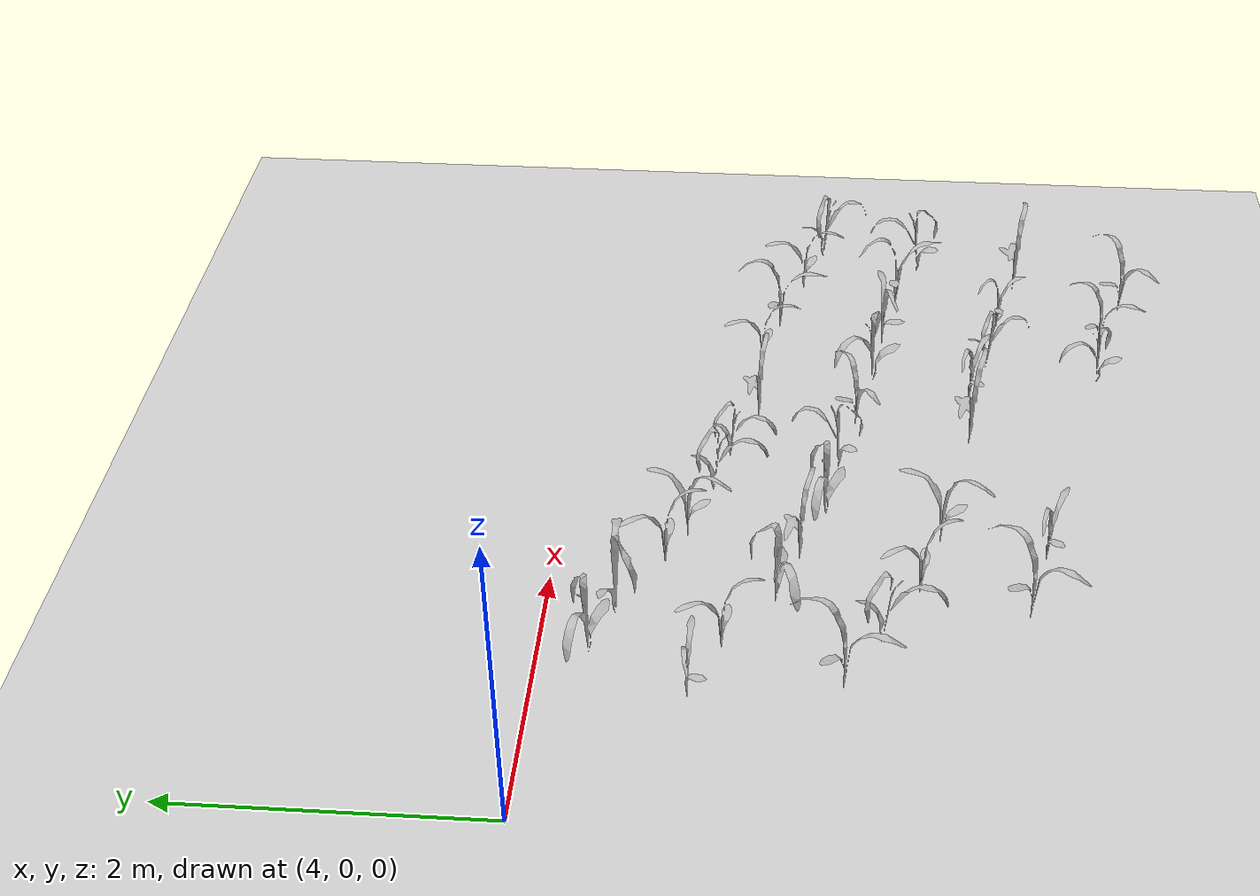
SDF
<sdf version="1.6">
 <world name="default">
  <model name="ground_plane">
   <static>1</static>
   <link name="link">
    <collision name="collision">
     <geometry><plane><normal>0 0 1</normal><size>100 100</size></plane></geometry>
     <surface>
      <contact><collide_bitmask>65535</collide_bitmask></contact>
      <friction><ode><mu>100</mu><mu2>50</mu2></ode></friction>
     </surface>
    </collision>
    <visual name="visual">
     <cast_shadows>0</cast_shadows>
     <geometry><plane><normal>0 0 1</normal><size>100 100</size></plane></geometry>
     <material>
      <script><uri>file://media/materials/scripts/gazebo.material</uri><name>Gazebo/Grey</name></script>
     </material>
    </visual>
   </link>
  </model>
  <model name="maize_02_0033">
   <pose>4.960368465998051 -0.9355059873038714 0.05 0 -0 2.1598457677370666</pose>
   <link name="maize_02_0033_link">
    <inertial>
     <mass>5.0</mass>
     <inertia>
      <ixx>0.0033416667</ixx>
      <ixy>0</ixy>
      <ixz>0</ixz>
      <iyy>0.0033416667</iyy>
      <iyz>0</iyz>
      <izz>0.000016666667</izz>
     </inertia>
     <pose>0 0 0.1 0 0 0</pose>
    </inertial>
    <collision name="collision">
     <pose>0 0 0.2 0 -0 0</pose>
     <geometry><box><size>0.02 0.02 0.4</size></box></geometry>
     <surface><friction><ode><mu>10</mu><mu2>10</mu2></ode></friction></surface>
    </collision>
    <visual name="visual">
     <geometry>
      <mesh>
       <uri>model://maize_02/meshes/maize_02.dae</uri>
       <scale>0.5581011642140988 0.5581011642140988 0.5581011642140988</scale>
      </mesh>
     </geometry>
    </visual>
   </link>
  </model>
  <model name="maize_01_0034">
   <pose>5.299077017650404 -0.3171936034555208 0.05 0 -0 3.7479421571614107</pose>
   <link name="maize_01_0034_link">
    <inertial>
     <mass>5.0</mass>
     <inertia>
      <ixx>0.0033416667</ixx>
      <ixy>0</ixy>
      <ixz>0</ixz>
      <iyy>0.0033416667</iyy>
      <iyz>0</iyz>
      <izz>0.000016666667</izz>
     </inertia>
     <pose>0 0 0.1 0 0 0</pose>
    </inertial>
    <collision name="collision">
     <pose>0 0 0.2 0 -0 0</pose>
     <geometry><box><size>0.02 0.02 0.4</size></box></geometry>
     <surface><friction><ode><mu>10</mu><mu2>10</mu2></ode></friction></surface>
    </collision>
    <visual name="visual">
     <geometry>
      <mesh>
       <uri>model://maize_01/meshes/maize_01.dae</uri>
       <scale>0.661183497575986 0.661183497575986 0.661183497575986</scale>
      </mesh>
     </geometry>
    </visual>
   </link>
  </model>
  <model name="maize_02_0037">
   <pose>5.380826796983916 -1.1121444295785388 0.05 0 -0 4.131736003612845</pose>
   <link name="maize_02_0037_link">
    <inertial>
     <mass>5.0</mass>
     <inertia>
      <ixx>0.0033416667</ixx>
      <ixy>0</ixy>
      <ixz>0</ixz>
      <iyy>0.0033416667</iyy>
      <iyz>0</iyz>
      <izz>0.000016666667</izz>
     </inertia>
     <pose>0 0 0.1 0 0 0</pose>
    </inertial>
    <collision name="collision">
     <pose>0 0 0.2 0 -0 0</pose>
     <geometry><box><size>0.02 0.02 0.4</size></box></geometry>
     <surface><friction><ode><mu>10</mu><mu2>10</mu2></ode></friction></surface>
    </collision>
    <visual name="visual">
     <geometry>
      <mesh>
       <uri>model://maize_02/meshes/maize_02.dae</uri>
       <scale>0.5576618371659392 0.5576618371659392 0.5576618371659392</scale>
      </mesh>
     </geometry>
    </visual>
   </link>
  </model>
  <model name="maize_01_0038">
   <pose>5.636869973974431 -0.4515647427213715 0.05 0 -0 0.8495256848192918</pose>
   <link name="maize_01_0038_link">
    <inertial>
     <mass>5.0</mass>
     <inertia>
      <ixx>0.0033416667</ixx>
      <ixy>0</ixy>
      <ixz>0</ixz>
      <iyy>0.0033416667</iyy>
      <iyz>0</iyz>
      <izz>0.000016666667</izz>
     </inertia>
     <pose>0 0 0.1 0 0 0</pose>
    </inertial>
    <collision name="collision">
     <pose>0 0 0.2 0 -0 0</pose>
     <geometry><box><size>0.02 0.02 0.4</size></box></geometry>
     <surface><friction><ode><mu>10</mu><mu2>10</mu2></ode></friction></surface>
    </collision>
    <visual name="visual">
     <geometry>
      <mesh>
       <uri>model://maize_01/meshes/maize_01.dae</uri>
       <scale>0.6989401438620291 0.6989401438620291 0.6989401438620291</scale>
      </mesh>
     </geometry>
    </visual>
   </link>
  </model>
  <model name="maize_02_0039">
   <pose>5.094399492638785 -1.8508619873585384 0.05 0 -0 0.24570918794548977</pose>
   <link name="maize_02_0039_link">
    <inertial>
     <mass>5.0</mass>
     <inertia>
      <ixx>0.0033416667</ixx>
      <ixy>0</ixy>
      <ixz>0</ixz>
      <iyy>0.0033416667</iyy>
      <iyz>0</iyz>
      <izz>0.000016666667</izz>
     </inertia>
     <pose>0 0 0.1 0 0 0</pose>
    </inertial>
    <collision name="collision">
     <pose>0 0 0.2 0 -0 0</pose>
     <geometry><box><size>0.02 0.02 0.4</size></box></geometry>
     <surface><friction><ode><mu>10</mu><mu2>10</mu2></ode></friction></surface>
    </collision>
    <visual name="visual">
     <geometry>
      <mesh>
       <uri>model://maize_02/meshes/maize_02.dae</uri>
       <scale>0.6969056075315362 0.6969056075315362 0.6969056075315362</scale>
      </mesh>
     </geometry>
    </visual>
   </link>
  </model>
  <model name="maize_01_0041">
   <pose>5.801728931763476 -1.4219378858371343 0.05 0 -0 4.255659404669304</pose>
   <link name="maize_01_0041_link">
    <inertial>
     <mass>5.0</mass>
     <inertia>
      <ixx>0.0033416667</ixx>
      <ixy>0</ixy>
      <ixz>0</ixz>
      <iyy>0.0033416667</iyy>
      <iyz>0</iyz>
      <izz>0.000016666667</izz>
     </inertia>
     <pose>0 0 0.1 0 0 0</pose>
    </inertial>
    <collision name="collision">
     <pose>0 0 0.2 0 -0 0</pose>
     <geometry><box><size>0.02 0.02 0.4</size></box></geometry>
     <surface><friction><ode><mu>10</mu><mu2>10</mu2></ode></friction></surface>
    </collision>
    <visual name="visual">
     <geometry>
      <mesh>
       <uri>model://maize_01/meshes/maize_01.dae</uri>
       <scale>0.6919242030783556 0.6919242030783556 0.6919242030783556</scale>
      </mesh>
     </geometry>
    </visual>
   </link>
  </model>
  <model name="maize_02_0042">
   <pose>6.123002035650348 -0.7153670293230351 0.05 0 -0 4.216375102309107</pose>
   <link name="maize_02_0042_link">
    <inertial>
     <mass>5.0</mass>
     <inertia>
      <ixx>0.0033416667</ixx>
      <ixy>0</ixy>
      <ixz>0</ixz>
      <iyy>0.0033416667</iyy>
      <iyz>0</iyz>
      <izz>0.000016666667</izz>
     </inertia>
     <pose>0 0 0.1 0 0 0</pose>
    </inertial>
    <collision name="collision">
     <pose>0 0 0.2 0 -0 0</pose>
     <geometry><box><size>0.02 0.02 0.4</size></box></geometry>
     <surface><friction><ode><mu>10</mu><mu2>10</mu2></ode></friction></surface>
    </collision>
    <visual name="visual">
     <geometry>
      <mesh>
       <uri>model://maize_02/meshes/maize_02.dae</uri>
       <scale>0.5916385500496594 0.5916385500496594 0.5916385500496594</scale>
      </mesh>
     </geometry>
    </visual>
   </link>
  </model>
  <model name="maize_01_0043">
   <pose>5.503921426295233 -2.078516221017225 0.05 0 -0 5.561816187318802</pose>
   <link name="maize_01_0043_link">
    <inertial>
     <mass>5.0</mass>
     <inertia>
      <ixx>0.0033416667</ixx>
      <ixy>0</ixy>
      <ixz>0</ixz>
      <iyy>0.0033416667</iyy>
      <iyz>0</iyz>
      <izz>0.000016666667</izz>
     </inertia>
     <pose>0 0 0.1 0 0 0</pose>
    </inertial>
    <collision name="collision">
     <pose>0 0 0.2 0 -0 0</pose>
     <geometry><box><size>0.02 0.02 0.4</size></box></geometry>
     <surface><friction><ode><mu>10</mu><mu2>10</mu2></ode></friction></surface>
    </collision>
    <visual name="visual">
     <geometry>
      <mesh>
       <uri>model://maize_01/meshes/maize_01.dae</uri>
       <scale>0.6191261338257424 0.6191261338257424 0.6191261338257424</scale>
      </mesh>
     </geometry>
    </visual>
   </link>
  </model>
  <model name="maize_02_0044">
   <pose>6.210458776372682 -1.560764899580351 0.05 0 -0 5.035069638224472</pose>
   <link name="maize_02_0044_link">
    <inertial>
     <mass>5.0</mass>
     <inertia>
      <ixx>0.0033416667</ixx>
      <ixy>0</ixy>
      <ixz>0</ixz>
      <iyy>0.0033416667</iyy>
      <iyz>0</iyz>
      <izz>0.000016666667</izz>
     </inertia>
     <pose>0 0 0.1 0 0 0</pose>
    </inertial>
    <collision name="collision">
     <pose>0 0 0.2 0 -0 0</pose>
     <geometry><box><size>0.02 0.02 0.4</size></box></geometry>
     <surface><friction><ode><mu>10</mu><mu2>10</mu2></ode></friction></surface>
    </collision>
    <visual name="visual">
     <geometry>
      <mesh>
       <uri>model://maize_02/meshes/maize_02.dae</uri>
       <scale>0.6353333783281057 0.6353333783281057 0.6353333783281057</scale>
      </mesh>
     </geometry>
    </visual>
   </link>
  </model>
  <model name="maize_02_0045">
   <pose>6.397982372111667 -0.8395475908505885 0.05 0 -0 3.256998167592604</pose>
   <link name="maize_02_0045_link">
    <inertial>
     <mass>5.0</mass>
     <inertia>
      <ixx>0.0033416667</ixx>
      <ixy>0</ixy>
      <ixz>0</ixz>
      <iyy>0.0033416667</iyy>
      <iyz>0</iyz>
      <izz>0.000016666667</izz>
     </inertia>
     <pose>0 0 0.1 0 0 0</pose>
    </inertial>
    <collision name="collision">
     <pose>0 0 0.2 0 -0 0</pose>
     <geometry><box><size>0.02 0.02 0.4</size></box></geometry>
     <surface><friction><ode><mu>10</mu><mu2>10</mu2></ode></friction></surface>
    </collision>
    <visual name="visual">
     <geometry>
      <mesh>
       <uri>model://maize_02/meshes/maize_02.dae</uri>
       <scale>0.604300763019085 0.604300763019085 0.604300763019085</scale>
      </mesh>
     </geometry>
    </visual>
   </link>
  </model>
  <model name="maize_02_0046">
   <pose>5.95832853603753 -2.3156317412115106 0.05 0 -0 4.245756654750301</pose>
   <link name="maize_02_0046_link">
    <inertial>
     <mass>5.0</mass>
     <inertia>
      <ixx>0.0033416667</ixx>
      <ixy>0</ixy>
      <ixz>0</ixz>
      <iyy>0.0033416667</iyy>
      <iyz>0</iyz>
      <izz>0.000016666667</izz>
     </inertia>
     <pose>0 0 0.1 0 0 0</pose>
    </inertial>
    <collision name="collision">
     <pose>0 0 0.2 0 -0 0</pose>
     <geometry><box><size>0.02 0.02 0.4</size></box></geometry>
     <surface><friction><ode><mu>10</mu><mu2>10</mu2></ode></friction></surface>
    </collision>
    <visual name="visual">
     <geometry>
      <mesh>
       <uri>model://maize_02/meshes/maize_02.dae</uri>
       <scale>0.5740207718928513 0.5740207718928513 0.5740207718928513</scale>
      </mesh>
     </geometry>
    </visual>
   </link>
  </model>
  <model name="maize_02_0047">
   <pose>5.767986204778223 -2.9865198082212308 0.05 0 -0 6.277337239589561</pose>
   <link name="maize_02_0047_link">
    <inertial>
     <mass>5.0</mass>
     <inertia>
      <ixx>0.0033416667</ixx>
      <ixy>0</ixy>
      <ixz>0</ixz>
      <iyy>0.0033416667</iyy>
      <iyz>0</iyz>
      <izz>0.000016666667</izz>
     </inertia>
     <pose>0 0 0.1 0 0 0</pose>
    </inertial>
    <collision name="collision">
     <pose>0 0 0.2 0 -0 0</pose>
     <geometry><box><size>0.02 0.02 0.4</size></box></geometry>
     <surface><friction><ode><mu>10</mu><mu2>10</mu2></ode></friction></surface>
    </collision>
    <visual name="visual">
     <geometry>
      <mesh>
       <uri>model://maize_02/meshes/maize_02.dae</uri>
       <scale>0.6906433935064686 0.6906433935064686 0.6906433935064686</scale>
      </mesh>
     </geometry>
    </visual>
   </link>
  </model>
  <model name="maize_01_0048">
   <pose>6.649586963596775 -1.7139959033057348 0.05 0 -0 3.755744642376578</pose>
   <link name="maize_01_0048_link">
    <inertial>
     <mass>5.0</mass>
     <inertia>
      <ixx>0.0033416667</ixx>
      <ixy>0</ixy>
      <ixz>0</ixz>
      <iyy>0.0033416667</iyy>
      <iyz>0</iyz>
      <izz>0.000016666667</izz>
     </inertia>
     <pose>0 0 0.1 0 0 0</pose>
    </inertial>
    <collision name="collision">
     <pose>0 0 0.2 0 -0 0</pose>
     <geometry><box><size>0.02 0.02 0.4</size></box></geometry>
     <surface><friction><ode><mu>10</mu><mu2>10</mu2></ode></friction></surface>
    </collision>
    <visual name="visual">
     <geometry>
      <mesh>
       <uri>model://maize_01/meshes/maize_01.dae</uri>
       <scale>0.6616736977128865 0.6616736977128865 0.6616736977128865</scale>
      </mesh>
     </geometry>
    </visual>
   </link>
  </model>
  <model name="maize_01_0049">
   <pose>6.863327963307856 -0.9797606673729811 0.05 0 -0 5.603196610547064</pose>
   <link name="maize_01_0049_link">
    <inertial>
     <mass>5.0</mass>
     <inertia>
      <ixx>0.0033416667</ixx>
      <ixy>0</ixy>
      <ixz>0</ixz>
      <iyy>0.0033416667</iyy>
      <iyz>0</iyz>
      <izz>0.000016666667</izz>
     </inertia>
     <pose>0 0 0.1 0 0 0</pose>
    </inertial>
    <collision name="collision">
     <pose>0 0 0.2 0 -0 0</pose>
     <geometry><box><size>0.02 0.02 0.4</size></box></geometry>
     <surface><friction><ode><mu>10</mu><mu2>10</mu2></ode></friction></surface>
    </collision>
    <visual name="visual">
     <geometry>
      <mesh>
       <uri>model://maize_01/meshes/maize_01.dae</uri>
       <scale>0.5811860311920897 0.5811860311920897 0.5811860311920897</scale>
      </mesh>
     </geometry>
    </visual>
   </link>
  </model>
  <model name="maize_02_0050">
   <pose>6.438861286626614 -2.457105299129998 0.05 0 -0 3.1984705406813494</pose>
   <link name="maize_02_0050_link">
    <inertial>
     <mass>5.0</mass>
     <inertia>
      <ixx>0.0033416667</ixx>
      <ixy>0</ixy>
      <ixz>0</ixz>
      <iyy>0.0033416667</iyy>
      <iyz>0</iyz>
      <izz>0.000016666667</izz>
     </inertia>
     <pose>0 0 0.1 0 0 0</pose>
    </inertial>
    <collision name="collision">
     <pose>0 0 0.2 0 -0 0</pose>
     <geometry><box><size>0.02 0.02 0.4</size></box></geometry>
     <surface><friction><ode><mu>10</mu><mu2>10</mu2></ode></friction></surface>
    </collision>
    <visual name="visual">
     <geometry>
      <mesh>
       <uri>model://maize_02/meshes/maize_02.dae</uri>
       <scale>0.6467942954645587 0.6467942954645587 0.6467942954645587</scale>
      </mesh>
     </geometry>
    </visual>
   </link>
  </model>
  <model name="maize_02_0051">
   <pose>6.298108858958803 -3.1201019149095592 0.05 0 -0 1.7803633762852777</pose>
   <link name="maize_02_0051_link">
    <inertial>
     <mass>5.0</mass>
     <inertia>
      <ixx>0.0033416667</ixx>
      <ixy>0</ixy>
      <ixz>0</ixz>
      <iyy>0.0033416667</iyy>
      <iyz>0</iyz>
      <izz>0.000016666667</izz>
     </inertia>
     <pose>0 0 0.1 0 0 0</pose>
    </inertial>
    <collision name="collision">
     <pose>0 0 0.2 0 -0 0</pose>
     <geometry><box><size>0.02 0.02 0.4</size></box></geometry>
     <surface><friction><ode><mu>10</mu><mu2>10</mu2></ode></friction></surface>
    </collision>
    <visual name="visual">
     <geometry>
      <mesh>
       <uri>model://maize_02/meshes/maize_02.dae</uri>
       <scale>0.5776375116548905 0.5776375116548905 0.5776375116548905</scale>
      </mesh>
     </geometry>
    </visual>
   </link>
  </model>
  <model name="maize_01_0052">
   <pose>7.17118140253864 -1.7989121086785484 0.05 0 -0 1.9193315468450178</pose>
   <link name="maize_01_0052_link">
    <inertial>
     <mass>5.0</mass>
     <inertia>
      <ixx>0.0033416667</ixx>
      <ixy>0</ixy>
      <ixz>0</ixz>
      <iyy>0.0033416667</iyy>
      <iyz>0</iyz>
      <izz>0.000016666667</izz>
     </inertia>
     <pose>0 0 0.1 0 0 0</pose>
    </inertial>
    <collision name="collision">
     <pose>0 0 0.2 0 -0 0</pose>
     <geometry><box><size>0.02 0.02 0.4</size></box></geometry>
     <surface><friction><ode><mu>10</mu><mu2>10</mu2></ode></friction></surface>
    </collision>
    <visual name="visual">
     <geometry>
      <mesh>
       <uri>model://maize_01/meshes/maize_01.dae</uri>
       <scale>0.5720714556326781 0.5720714556326781 0.5720714556326781</scale>
      </mesh>
     </geometry>
    </visual>
   </link>
  </model>
  <model name="maize_01_0053">
   <pose>7.234087771317568 -1.070650363741629 0.05 0 -0 5.360261698219691</pose>
   <link name="maize_01_0053_link">
    <inertial>
     <mass>5.0</mass>
     <inertia>
      <ixx>0.0033416667</ixx>
      <ixy>0</ixy>
      <ixz>0</ixz>
      <iyy>0.0033416667</iyy>
      <iyz>0</iyz>
      <izz>0.000016666667</izz>
     </inertia>
     <pose>0 0 0.1 0 0 0</pose>
    </inertial>
    <collision name="collision">
     <pose>0 0 0.2 0 -0 0</pose>
     <geometry><box><size>0.02 0.02 0.4</size></box></geometry>
     <surface><friction><ode><mu>10</mu><mu2>10</mu2></ode></friction></surface>
    </collision>
    <visual name="visual">
     <geometry>
      <mesh>
       <uri>model://maize_01/meshes/maize_01.dae</uri>
       <scale>0.5070694709388557 0.5070694709388557 0.5070694709388557</scale>
      </mesh>
     </geometry>
    </visual>
   </link>
  </model>
  <model name="maize_02_0054">
   <pose>7.610075070794979 -1.9095222483055125 0.05 0 -0 5.853891303534344</pose>
   <link name="maize_02_0054_link">
    <inertial>
     <mass>5.0</mass>
     <inertia>
      <ixx>0.0033416667</ixx>
      <ixy>0</ixy>
      <ixz>0</ixz>
      <iyy>0.0033416667</iyy>
      <iyz>0</iyz>
      <izz>0.000016666667</izz>
     </inertia>
     <pose>0 0 0.1 0 0 0</pose>
    </inertial>
    <collision name="collision">
     <pose>0 0 0.2 0 -0 0</pose>
     <geometry><box><size>0.02 0.02 0.4</size></box></geometry>
     <surface><friction><ode><mu>10</mu><mu2>10</mu2></ode></friction></surface>
    </collision>
    <visual name="visual">
     <geometry>
      <mesh>
       <uri>model://maize_02/meshes/maize_02.dae</uri>
       <scale>0.5761831144545032 0.5761831144545032 0.5761831144545032</scale>
      </mesh>
     </geometry>
    </visual>
   </link>
  </model>
  <model name="maize_02_0055">
   <pose>7.692980484560454 -1.2409872856509792 0.05 0 -0 5.1338045619563815</pose>
   <link name="maize_02_0055_link">
    <inertial>
     <mass>5.0</mass>
     <inertia>
      <ixx>0.0033416667</ixx>
      <ixy>0</ixy>
      <ixz>0</ixz>
      <iyy>0.0033416667</iyy>
      <iyz>0</iyz>
      <izz>0.000016666667</izz>
     </inertia>
     <pose>0 0 0.1 0 0 0</pose>
    </inertial>
    <collision name="collision">
     <pose>0 0 0.2 0 -0 0</pose>
     <geometry><box><size>0.02 0.02 0.4</size></box></geometry>
     <surface><friction><ode><mu>10</mu><mu2>10</mu2></ode></friction></surface>
    </collision>
    <visual name="visual">
     <geometry>
      <mesh>
       <uri>model://maize_02/meshes/maize_02.dae</uri>
       <scale>0.6120319577522696 0.6120319577522696 0.6120319577522696</scale>
      </mesh>
     </geometry>
    </visual>
   </link>
  </model>
  <model name="maize_02_0056">
   <pose>7.48302492159469 -2.6844494783002095 0.05 0 -0 5.003051203613753</pose>
   <link name="maize_02_0056_link">
    <inertial>
     <mass>5.0</mass>
     <inertia>
      <ixx>0.0033416667</ixx>
      <ixy>0</ixy>
      <ixz>0</ixz>
      <iyy>0.0033416667</iyy>
      <iyz>0</iyz>
      <izz>0.000016666667</izz>
     </inertia>
     <pose>0 0 0.1 0 0 0</pose>
    </inertial>
    <collision name="collision">
     <pose>0 0 0.2 0 -0 0</pose>
     <geometry><box><size>0.02 0.02 0.4</size></box></geometry>
     <surface><friction><ode><mu>10</mu><mu2>10</mu2></ode></friction></surface>
    </collision>
    <visual name="visual">
     <geometry>
      <mesh>
       <uri>model://maize_02/meshes/maize_02.dae</uri>
       <scale>0.6939565961798845 0.6939565961798845 0.6939565961798845</scale>
      </mesh>
     </geometry>
    </visual>
   </link>
  </model>
  <model name="maize_01_0057">
   <pose>8.179087219703533 -2.032215731315807 0.05 0 -0 3.1191036764182445</pose>
   <link name="maize_01_0057_link">
    <inertial>
     <mass>5.0</mass>
     <inertia>
      <ixx>0.0033416667</ixx>
      <ixy>0</ixy>
      <ixz>0</ixz>
      <iyy>0.0033416667</iyy>
      <iyz>0</iyz>
      <izz>0.000016666667</izz>
     </inertia>
     <pose>0 0 0.1 0 0 0</pose>
    </inertial>
    <collision name="collision">
     <pose>0 0 0.2 0 -0 0</pose>
     <geometry><box><size>0.02 0.02 0.4</size></box></geometry>
     <surface><friction><ode><mu>10</mu><mu2>10</mu2></ode></friction></surface>
    </collision>
    <visual name="visual">
     <geometry>
      <mesh>
       <uri>model://maize_01/meshes/maize_01.dae</uri>
       <scale>0.6320471348074791 0.6320471348074791 0.6320471348074791</scale>
      </mesh>
     </geometry>
    </visual>
   </link>
  </model>
  <model name="maize_02_0058">
   <pose>8.318405709210207 -1.2400516035745033 0.05 0 -0 3.9974566228724773</pose>
   <link name="maize_02_0058_link">
    <inertial>
     <mass>5.0</mass>
     <inertia>
      <ixx>0.0033416667</ixx>
      <ixy>0</ixy>
      <ixz>0</ixz>
      <iyy>0.0033416667</iyy>
      <iyz>0</iyz>
      <izz>0.000016666667</izz>
     </inertia>
     <pose>0 0 0.1 0 0 0</pose>
    </inertial>
    <collision name="collision">
     <pose>0 0 0.2 0 -0 0</pose>
     <geometry><box><size>0.02 0.02 0.4</size></box></geometry>
     <surface><friction><ode><mu>10</mu><mu2>10</mu2></ode></friction></surface>
    </collision>
    <visual name="visual">
     <geometry>
      <mesh>
       <uri>model://maize_02/meshes/maize_02.dae</uri>
       <scale>0.537285136365032 0.537285136365032 0.537285136365032</scale>
      </mesh>
     </geometry>
    </visual>
   </link>
  </model>
  <model name="maize_02_0059">
   <pose>7.950962744307331 -2.704367071509 0.05 0 -0 1.7660979900803653</pose>
   <link name="maize_02_0059_link">
    <inertial>
     <mass>5.0</mass>
     <inertia>
      <ixx>0.0033416667</ixx>
      <ixy>0</ixy>
      <ixz>0</ixz>
      <iyy>0.0033416667</iyy>
      <iyz>0</iyz>
      <izz>0.000016666667</izz>
     </inertia>
     <pose>0 0 0.1 0 0 0</pose>
    </inertial>
    <collision name="collision">
     <pose>0 0 0.2 0 -0 0</pose>
     <geometry><box><size>0.02 0.02 0.4</size></box></geometry>
     <surface><friction><ode><mu>10</mu><mu2>10</mu2></ode></friction></surface>
    </collision>
    <visual name="visual">
     <geometry>
      <mesh>
       <uri>model://maize_02/meshes/maize_02.dae</uri>
       <scale>0.5849481296283322 0.5849481296283322 0.5849481296283322</scale>
      </mesh>
     </geometry>
    </visual>
   </link>
  </model>
  <model name="maize_02_0060">
   <pose>8.601920946539888 -2.1021150568137252 0.05 0 -0 2.328476074341754</pose>
   <link name="maize_02_0060_link">
    <inertial>
     <mass>5.0</mass>
     <inertia>
      <ixx>0.0033416667</ixx>
      <ixy>0</ixy>
      <ixz>0</ixz>
      <iyy>0.0033416667</iyy>
      <iyz>0</iyz>
      <izz>0.000016666667</izz>
     </inertia>
     <pose>0 0 0.1 0 0 0</pose>
    </inertial>
    <collision name="collision">
     <pose>0 0 0.2 0 -0 0</pose>
     <geometry><box><size>0.02 0.02 0.4</size></box></geometry>
     <surface><friction><ode><mu>10</mu><mu2>10</mu2></ode></friction></surface>
    </collision>
    <visual name="visual">
     <geometry>
      <mesh>
       <uri>model://maize_02/meshes/maize_02.dae</uri>
       <scale>0.6399658166035169 0.6399658166035169 0.6399658166035169</scale>
      </mesh>
     </geometry>
    </visual>
   </link>
  </model>
  <model name="maize_02_0061">
   <pose>8.790644129741503 -1.354850356359707 0.05 0 -0 0.7179212252596441</pose>
   <link name="maize_02_0061_link">
    <inertial>
     <mass>5.0</mass>
     <inertia>
      <ixx>0.0033416667</ixx>
      <ixy>0</ixy>
      <ixz>0</ixz>
      <iyy>0.0033416667</iyy>
      <iyz>0</iyz>
      <izz>0.000016666667</izz>
     </inertia>
     <pose>0 0 0.1 0 0 0</pose>
    </inertial>
    <collision name="collision">
     <pose>0 0 0.2 0 -0 0</pose>
     <geometry><box><size>0.02 0.02 0.4</size></box></geometry>
     <surface><friction><ode><mu>10</mu><mu2>10</mu2></ode></friction></surface>
    </collision>
    <visual name="visual">
     <geometry>
      <mesh>
       <uri>model://maize_02/meshes/maize_02.dae</uri>
       <scale>0.6422198931139468 0.6422198931139468 0.6422198931139468</scale>
      </mesh>
     </geometry>
    </visual>
   </link>
  </model>
  <model name="maize_01_0062">
   <pose>8.39938005604684 -2.8481918893441773 0.05 0 -0 5.924262318056059</pose>
   <link name="maize_01_0062_link">
    <inertial>
     <mass>5.0</mass>
     <inertia>
      <ixx>0.0033416667</ixx>
      <ixy>0</ixy>
      <ixz>0</ixz>
      <iyy>0.0033416667</iyy>
      <iyz>0</iyz>
      <izz>0.000016666667</izz>
     </inertia>
     <pose>0 0 0.1 0 0 0</pose>
    </inertial>
    <collision name="collision">
     <pose>0 0 0.2 0 -0 0</pose>
     <geometry><box><size>0.02 0.02 0.4</size></box></geometry>
     <surface><friction><ode><mu>10</mu><mu2>10</mu2></ode></friction></surface>
    </collision>
    <visual name="visual">
     <geometry>
      <mesh>
       <uri>model://maize_01/meshes/maize_01.dae</uri>
       <scale>0.5311446698429 0.5311446698429 0.5311446698429</scale>
      </mesh>
     </geometry>
    </visual>
   </link>
  </model>
  <model name="maize_01_0063">
   <pose>8.263704319010111 -3.6234885715072096 0.05 0 -0 2.703705160575316</pose>
   <link name="maize_01_0063_link">
    <inertial>
     <mass>5.0</mass>
     <inertia>
      <ixx>0.0033416667</ixx>
      <ixy>0</ixy>
      <ixz>0</ixz>
      <iyy>0.0033416667</iyy>
      <iyz>0</iyz>
      <izz>0.000016666667</izz>
     </inertia>
     <pose>0 0 0.1 0 0 0</pose>
    </inertial>
    <collision name="collision">
     <pose>0 0 0.2 0 -0 0</pose>
     <geometry><box><size>0.02 0.02 0.4</size></box></geometry>
     <surface><friction><ode><mu>10</mu><mu2>10</mu2></ode></friction></surface>
    </collision>
    <visual name="visual">
     <geometry>
      <mesh>
       <uri>model://maize_01/meshes/maize_01.dae</uri>
       <scale>0.5149134677070963 0.5149134677070963 0.5149134677070963</scale>
      </mesh>
     </geometry>
    </visual>
   </link>
  </model>
  <model name="maize_02_0064">
   <pose>9.129155487399359 -2.2058788282548742 0.05 0 -0 1.1002479343425602</pose>
   <link name="maize_02_0064_link">
    <inertial>
     <mass>5.0</mass>
     <inertia>
      <ixx>0.0033416667</ixx>
      <ixy>0</ixy>
      <ixz>0</ixz>
      <iyy>0.0033416667</iyy>
      <iyz>0</iyz>
      <izz>0.000016666667</izz>
     </inertia>
     <pose>0 0 0.1 0 0 0</pose>
    </inertial>
    <collision name="collision">
     <pose>0 0 0.2 0 -0 0</pose>
     <geometry><box><size>0.02 0.02 0.4</size></box></geometry>
     <surface><friction><ode><mu>10</mu><mu2>10</mu2></ode></friction></surface>
    </collision>
    <visual name="visual">
     <geometry>
      <mesh>
       <uri>model://maize_02/meshes/maize_02.dae</uri>
       <scale>0.686196080986118 0.686196080986118 0.686196080986118</scale>
      </mesh>
     </geometry>
    </visual>
   </link>
  </model>
  <model name="maize_02_0065">
   <pose>9.297235535308364 -1.514745787697941 0.05 0 -0 3.772333021571172</pose>
   <link name="maize_02_0065_link">
    <inertial>
     <mass>5.0</mass>
     <inertia>
      <ixx>0.0033416667</ixx>
      <ixy>0</ixy>
      <ixz>0</ixz>
      <iyy>0.0033416667</iyy>
      <iyz>0</iyz>
      <izz>0.000016666667</izz>
     </inertia>
     <pose>0 0 0.1 0 0 0</pose>
    </inertial>
    <collision name="collision">
     <pose>0 0 0.2 0 -0 0</pose>
     <geometry><box><size>0.02 0.02 0.4</size></box></geometry>
     <surface><friction><ode><mu>10</mu><mu2>10</mu2></ode></friction></surface>
    </collision>
    <visual name="visual">
     <geometry>
      <mesh>
       <uri>model://maize_02/meshes/maize_02.dae</uri>
       <scale>0.5692331337227388 0.5692331337227388 0.5692331337227388</scale>
      </mesh>
     </geometry>
    </visual>
   </link>
  </model>
  <model name="maize_02_0066">
   <pose>8.899020170349548 -2.947431958029606 0.05 0 -0 1.326658884698758</pose>
   <link name="maize_02_0066_link">
    <inertial>
     <mass>5.0</mass>
     <inertia>
      <ixx>0.0033416667</ixx>
      <ixy>0</ixy>
      <ixz>0</ixz>
      <iyy>0.0033416667</iyy>
      <iyz>0</iyz>
      <izz>0.000016666667</izz>
     </inertia>
     <pose>0 0 0.1 0 0 0</pose>
    </inertial>
    <collision name="collision">
     <pose>0 0 0.2 0 -0 0</pose>
     <geometry><box><size>0.02 0.02 0.4</size></box></geometry>
     <surface><friction><ode><mu>10</mu><mu2>10</mu2></ode></friction></surface>
    </collision>
    <visual name="visual">
     <geometry>
      <mesh>
       <uri>model://maize_02/meshes/maize_02.dae</uri>
       <scale>0.5071677971419277 0.5071677971419277 0.5071677971419277</scale>
      </mesh>
     </geometry>
    </visual>
   </link>
  </model>
  <model name="maize_02_0067">
   <pose>8.664987540505523 -3.6701034457758612 0.05 0 -0 0.29071450968419704</pose>
   <link name="maize_02_0067_link">
    <inertial>
     <mass>5.0</mass>
     <inertia>
      <ixx>0.0033416667</ixx>
      <ixy>0</ixy>
      <ixz>0</ixz>
      <iyy>0.0033416667</iyy>
      <iyz>0</iyz>
      <izz>0.000016666667</izz>
     </inertia>
     <pose>0 0 0.1 0 0 0</pose>
    </inertial>
    <collision name="collision">
     <pose>0 0 0.2 0 -0 0</pose>
     <geometry><box><size>0.02 0.02 0.4</size></box></geometry>
     <surface><friction><ode><mu>10</mu><mu2>10</mu2></ode></friction></surface>
    </collision>
    <visual name="visual">
     <geometry>
      <mesh>
       <uri>model://maize_02/meshes/maize_02.dae</uri>
       <scale>0.5919495048833423 0.5919495048833423 0.5919495048833423</scale>
      </mesh>
     </geometry>
    </visual>
   </link>
  </model>
  <model name="maize_01_0068">
   <pose>9.617852568165986 -2.373563738711177 0.05 0 -0 2.1614821143910743</pose>
   <link name="maize_01_0068_link">
    <inertial>
     <mass>5.0</mass>
     <inertia>
      <ixx>0.0033416667</ixx>
      <ixy>0</ixy>
      <ixz>0</ixz>
      <iyy>0.0033416667</iyy>
      <iyz>0</iyz>
      <izz>0.000016666667</izz>
     </inertia>
     <pose>0 0 0.1 0 0 0</pose>
    </inertial>
    <collision name="collision">
     <pose>0 0 0.2 0 -0 0</pose>
     <geometry><box><size>0.02 0.02 0.4</size></box></geometry>
     <surface><friction><ode><mu>10</mu><mu2>10</mu2></ode></friction></surface>
    </collision>
    <visual name="visual">
     <geometry>
      <mesh>
       <uri>model://maize_01/meshes/maize_01.dae</uri>
       <scale>0.6033949706860549 0.6033949706860549 0.6033949706860549</scale>
      </mesh>
     </geometry>
    </visual>
   </link>
  </model>
  <model name="maize_01_0069">
   <pose>9.793287314635206 -1.6593846249627588 0.05 0 -0 6.004657663161543</pose>
   <link name="maize_01_0069_link">
    <inertial>
     <mass>5.0</mass>
     <inertia>
      <ixx>0.0033416667</ixx>
      <ixy>0</ixy>
      <ixz>0</ixz>
      <iyy>0.0033416667</iyy>
      <iyz>0</iyz>
      <izz>0.000016666667</izz>
     </inertia>
     <pose>0 0 0.1 0 0 0</pose>
    </inertial>
    <collision name="collision">
     <pose>0 0 0.2 0 -0 0</pose>
     <geometry><box><size>0.02 0.02 0.4</size></box></geometry>
     <surface><friction><ode><mu>10</mu><mu2>10</mu2></ode></friction></surface>
    </collision>
    <visual name="visual">
     <geometry>
      <mesh>
       <uri>model://maize_01/meshes/maize_01.dae</uri>
       <scale>0.5967714700917582 0.5967714700917582 0.5967714700917582</scale>
      </mesh>
     </geometry>
    </visual>
   </link>
  </model>
  <model name="maize_02_0070">
   <pose>9.427481283202054 -3.099873628246253 0.05 0 -0 5.072398345437444</pose>
   <link name="maize_02_0070_link">
    <inertial>
     <mass>5.0</mass>
     <inertia>
      <ixx>0.0033416667</ixx>
      <ixy>0</ixy>
      <ixz>0</ixz>
      <iyy>0.0033416667</iyy>
      <iyz>0</iyz>
      <izz>0.000016666667</izz>
     </inertia>
     <pose>0 0 0.1 0 0 0</pose>
    </inertial>
    <collision name="collision">
     <pose>0 0 0.2 0 -0 0</pose>
     <geometry><box><size>0.02 0.02 0.4</size></box></geometry>
     <surface><friction><ode><mu>10</mu><mu2>10</mu2></ode></friction></surface>
    </collision>
    <visual name="visual">
     <geometry>
      <mesh>
       <uri>model://maize_02/meshes/maize_02.dae</uri>
       <scale>0.6795474981474978 0.6795474981474978 0.6795474981474978</scale>
      </mesh>
     </geometry>
    </visual>
   </link>
  </model>
  <model name="maize_02_0071">
   <pose>9.151986199050912 -3.86190130597881 0.05 0 -0 6.0313088583273275</pose>
   <link name="maize_02_0071_link">
    <inertial>
     <mass>5.0</mass>
     <inertia>
      <ixx>0.0033416667</ixx>
      <ixy>0</ixy>
      <ixz>0</ixz>
      <iyy>0.0033416667</iyy>
      <iyz>0</iyz>
      <izz>0.000016666667</izz>
     </inertia>
     <pose>0 0 0.1 0 0 0</pose>
    </inertial>
    <collision name="collision">
     <pose>0 0 0.2 0 -0 0</pose>
     <geometry><box><size>0.02 0.02 0.4</size></box></geometry>
     <surface><friction><ode><mu>10</mu><mu2>10</mu2></ode></friction></surface>
    </collision>
    <visual name="visual">
     <geometry>
      <mesh>
       <uri>model://maize_02/meshes/maize_02.dae</uri>
       <scale>0.6430417628607287 0.6430417628607287 0.6430417628607287</scale>
      </mesh>
     </geometry>
    </visual>
   </link>
  </model>
 </world>
</sdf>
